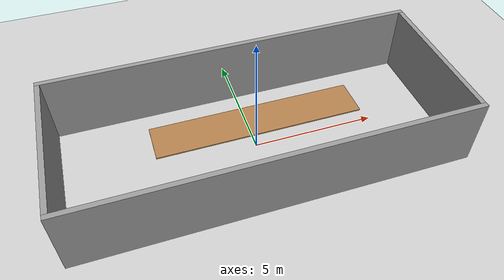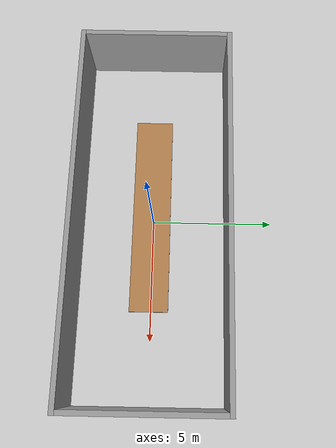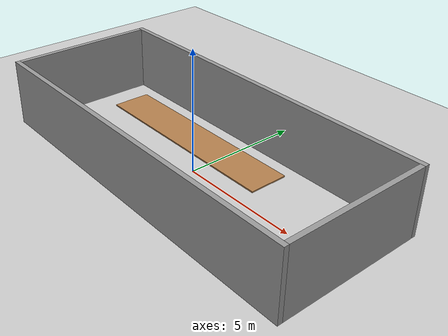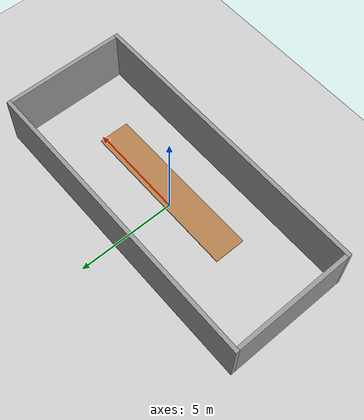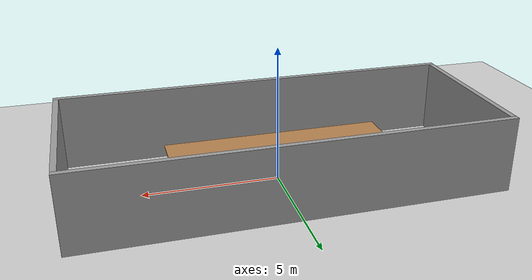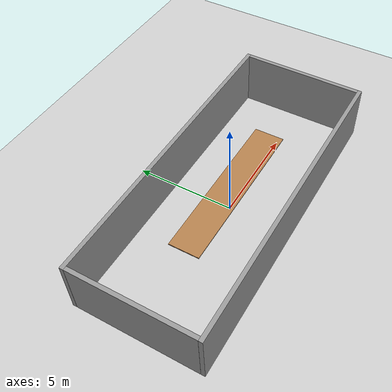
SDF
<sdf version="1.4">
 <world name="default">
  <include><uri>model://ground_plane</uri></include>
  <include><uri>model://sun</uri></include>
  <model name="desk">
   <static>1</static>
   <pose frame="ground_plane">0 0 1.48 0 0 0</pose>
   <link name="desk">
    <gravity>0</gravity>
    <collision name="desk_collision">
     <geometry><box><size>8 1.5 0.04</size></box></geometry>
     <surface><friction><ode><mu>0.6</mu><mu2>0.6</mu2></ode></friction></surface>
    </collision>
    <visual name="desk_visual">
     <geometry><box><size>8 1.5 0.05</size></box></geometry>
     <material>
      <script><uri>file://media/materials/scripts/gazebo.material</uri><name>Gazebo/Wood</name></script>
     </material>
    </visual>
    <inertial>
     <mass>100</mass>
     <inertia><ixx>1</ixx><ixy>0</ixy><ixz>0</ixz><iyy>1</iyy><iyz>0</iyz><izz>1</izz></inertia>
    </inertial>
   </link>
  </model>
  <model name="east_grey_wall">
   <static>true</static>
   <link name="link">
    <pose>7.6 0 1.4 0 0 1.57</pose>
    <collision name="collision"><geometry><box><size>6 0.2 2.8</size></box></geometry></collision>
    <visual name="visual">
     <cast_shadows>false</cast_shadows>
     <geometry><box><size>6 0.2 2.8</size></box></geometry>
     <material>
      <script>
       <uri>model://grey_wall/materials/scripts</uri>
       <uri>model://grey_wall/materials/textures</uri>
       <name>vrc/grey_wall</name>
      </script>
     </material>
    </visual>
   </link>
  </model>
  <model name="grey_wall">
   <static>true</static>
   <link name="link">
    <pose>-7.6 0 1.4 0 0 1.57</pose>
    <collision name="collision"><geometry><box><size>6 0.2 2.8</size></box></geometry></collision>
    <visual name="visual">
     <cast_shadows>false</cast_shadows>
     <geometry><box><size>6 0.2 2.8</size></box></geometry>
     <material>
      <script>
       <uri>model://grey_wall/materials/scripts</uri>
       <uri>model://grey_wall/materials/textures</uri>
       <name>vrc/grey_wall</name>
      </script>
     </material>
    </visual>
   </link>
  </model>
  <model name="north_grey_wall">
   <static>true</static>
   <link name="link">
    <pose>0 3.1 1.4 0 0 0</pose>
    <collision name="collision"><geometry><box><size>15.4 0.2 2.8</size></box></geometry></collision>
    <visual name="visual">
     <cast_shadows>false</cast_shadows>
     <geometry><box><size>15.4 0.2 2.8</size></box></geometry>
     <material>
      <script>
       <uri>model://grey_wall/materials/scripts</uri>
       <uri>model://grey_wall/materials/textures</uri>
       <name>vrc/grey_wall</name>
      </script>
     </material>
    </visual>
   </link>
  </model>
  <model name="south_grey_wall">
   <static>true</static>
   <link name="link">
    <pose>0 -3.1 1.4 0 0 0</pose>
    <collision name="collision"><geometry><box><size>15.4 0.2 2.8</size></box></geometry></collision>
    <visual name="visual">
     <cast_shadows>false</cast_shadows>
     <geometry><box><size>15.4 0.2 2.8</size></box></geometry>
     <material>
      <script>
       <uri>model://grey_wall/materials/scripts</uri>
       <uri>model://grey_wall/materials/textures</uri>
       <name>vrc/grey_wall</name>
      </script>
     </material>
    </visual>
   </link>
  </model>
 </world>
</sdf>
